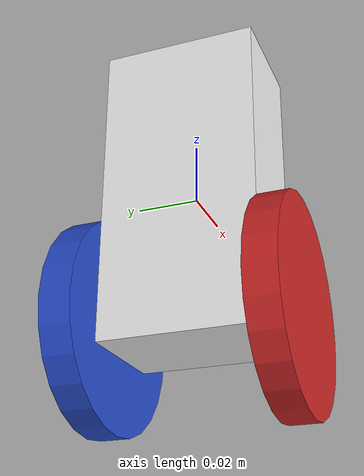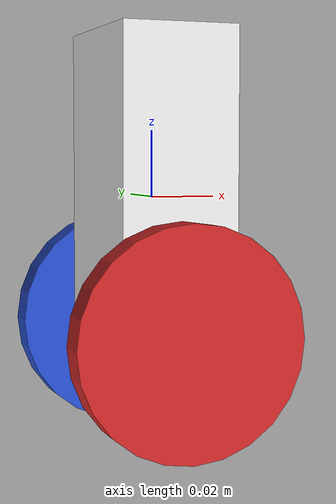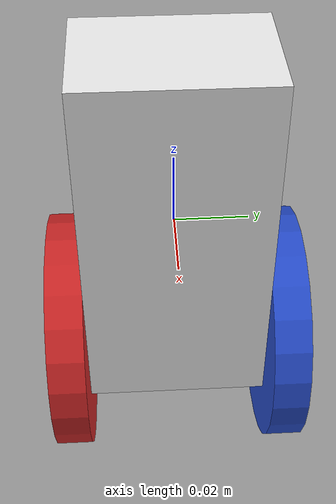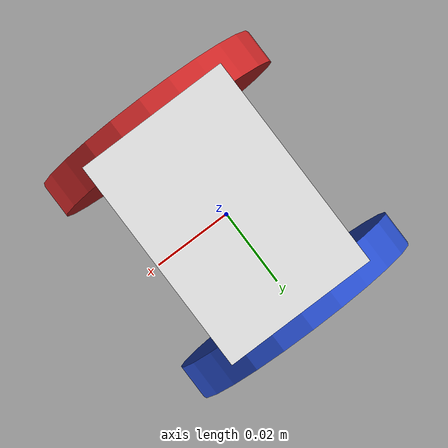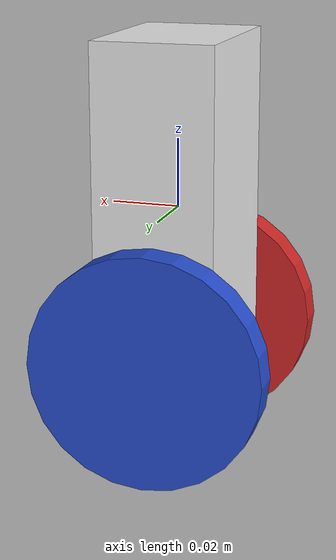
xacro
<?xml version="1.0"?>
<robot xmlns:xacro="http://www.ros.org/wiki/xacro" name="wheely_boi">
  <xacro:property name="wheel_separation" value="0.070" />
  <xacro:property name="wheel_radius" value="0.034" />
  <xacro:property name="wheel_width" value="0.010" />
  <xacro:property name="body_height" value="0.1" />
  <xacro:property name="body_width" value="0.050" />
  <xacro:property name="body_length" value="0.035" />

  <gazebo reference="edumip_body">
    <material>Gazebo/White</material>
    <mu1>0.2</mu1>
    <mu2>0.2</mu2>
  </gazebo>

  <gazebo reference="wheelR">
    <material>Gazebo/Red</material>
    <mu1>0.84</mu1>
    <mu2>0.84</mu2>
  </gazebo>

  <gazebo reference="wheelL">
    <material>Gazebo/Blue</material>
    <mu1>0.84</mu1>
    <mu2>0.84</mu2>
  </gazebo>

  <link name="edumip_body">
    <visual>
      <geometry>
        <box size="${body_length} ${body_width} ${body_height}"/>
      </geometry>
    </visual>

    <collision>
      <geometry>
        <box size="${body_length} ${body_width} ${body_height}"/>
      </geometry>
    </collision>

    <inertial>
      <mass value="0.18"/>
      <inertia ixx="6.0e-4" ixy="0" ixz="0" iyy="6.0e-4" iyz="0" izz="6.0e-4"/>
    </inertial>
  </link>

  <link name="wheelL">
    <visual>
      <geometry>
        <cylinder length="${wheel_width}" radius="${wheel_radius}"/>
      </geometry>
    </visual>

    <collision>
      <geometry>
        <cylinder length="${wheel_width}" radius="${wheel_radius}"/>
      </geometry>
    </collision>

    <inertial>
      <mass value="0.03"/>
      <inertia ixx="1.75e-5" ixy="0.0" ixz="0.0" iyy="1.75e-5" iyz="0.0" izz="1.75e-5"/>
    </inertial>
  </link>

  <link name="wheelR">
    <visual>
      <geometry>
        <cylinder length="${wheel_width}" radius="${wheel_radius}"/>
      </geometry>
    </visual>

    <collision>
      <geometry>
        <cylinder length="${wheel_width}" radius="${wheel_radius}"/>
      </geometry>
    </collision>

    <inertial>
      <mass value="0.03"/>
      <inertia ixx="1.75e-5" ixy="0.0" ixz="0.0" iyy="1.75e-5" iyz="0.0" izz="1.75e-5"/>
    </inertial>
  </link>

  <joint name="jointL" type="continuous">
    <parent link="edumip_body"/>
    <child link="wheelL"/>
    <axis xyz="0 0 1"/>
    <origin xyz="0 ${body_width/2 + wheel_width/2} -${body_height/2 - 0.01}" rpy="${pi/2} 0 0" />
    <dynamics friction="0.1"/>
  </joint>

  <joint name="jointR" type="continuous">
    <parent link="edumip_body"/>
    <child link="wheelR"/>
    <axis xyz="0 0 1"/>
    <origin xyz="0 -${body_width/2 + wheel_width/2} -${body_height/2 - 0.01}" rpy="${pi/2} 0 0" />
    <dynamics friction="0.1"/>
  </joint>

  <gazebo>
    <plugin name="wb_plugin" filename="libwb_plugin.so"> </plugin>
  </gazebo>
</robot>
